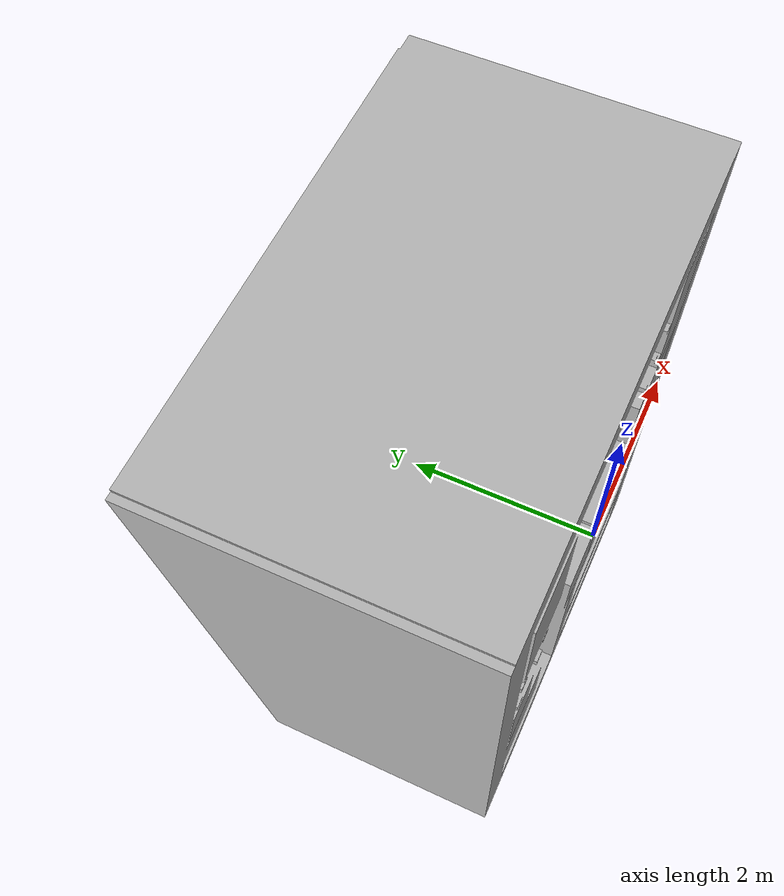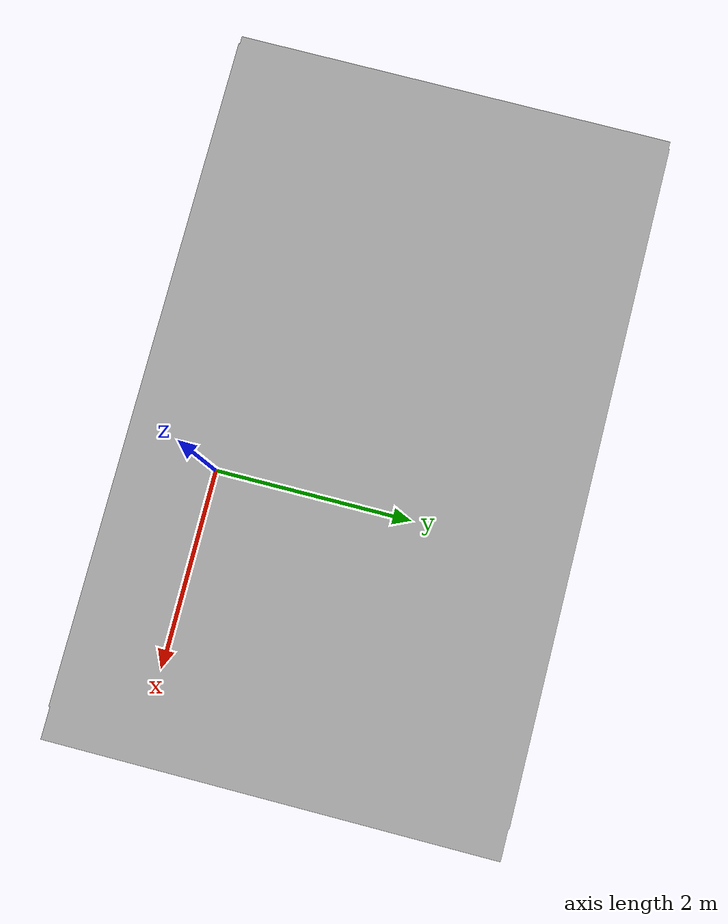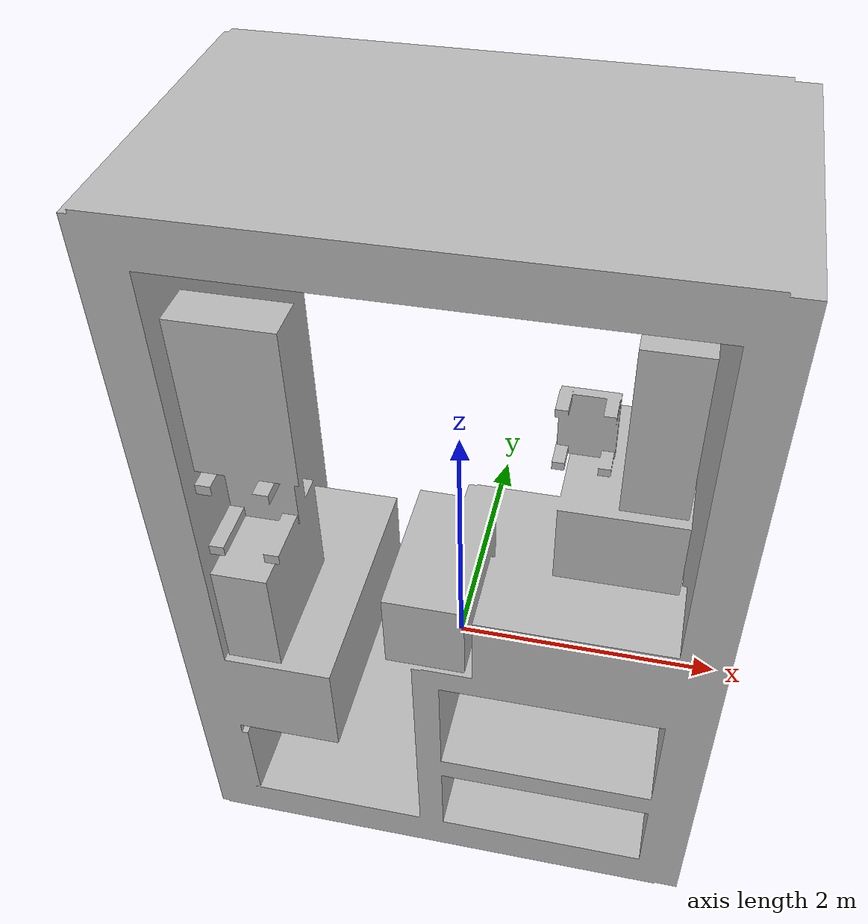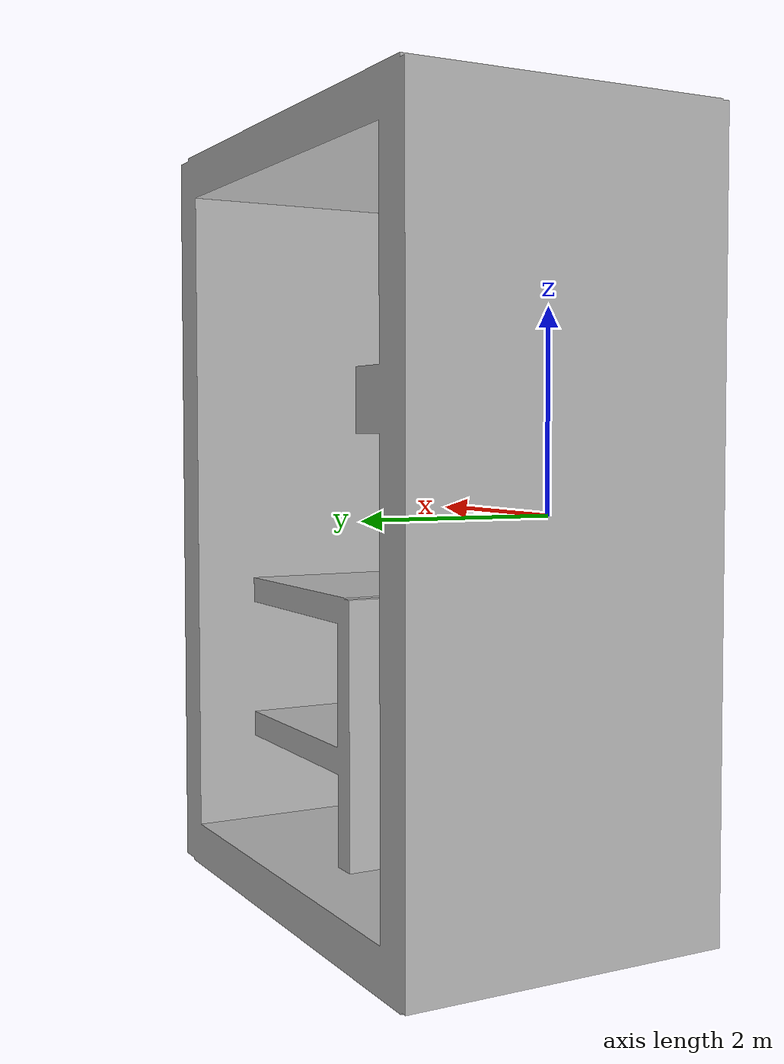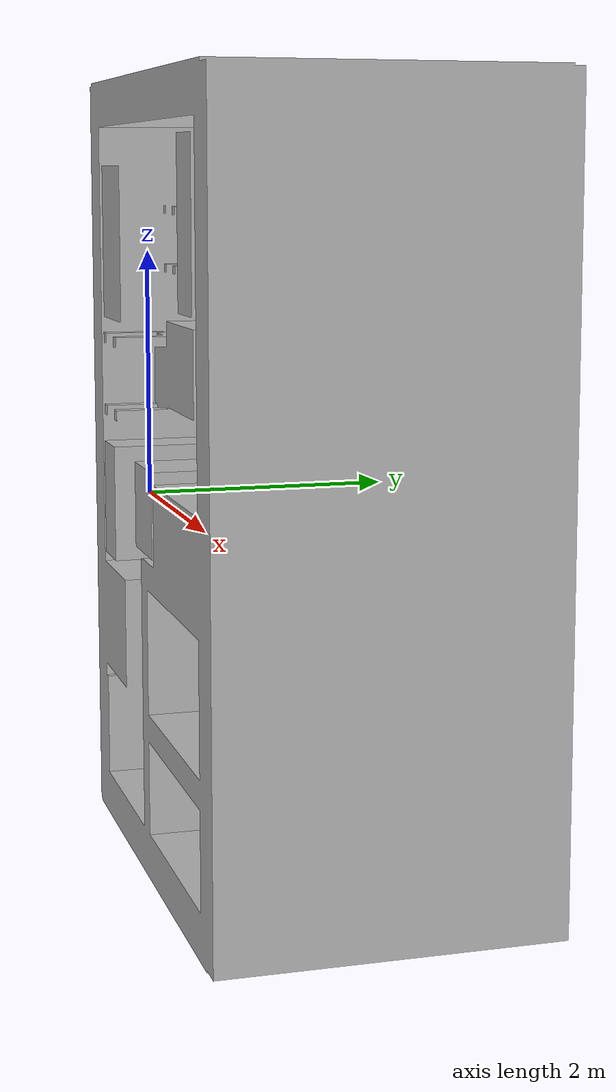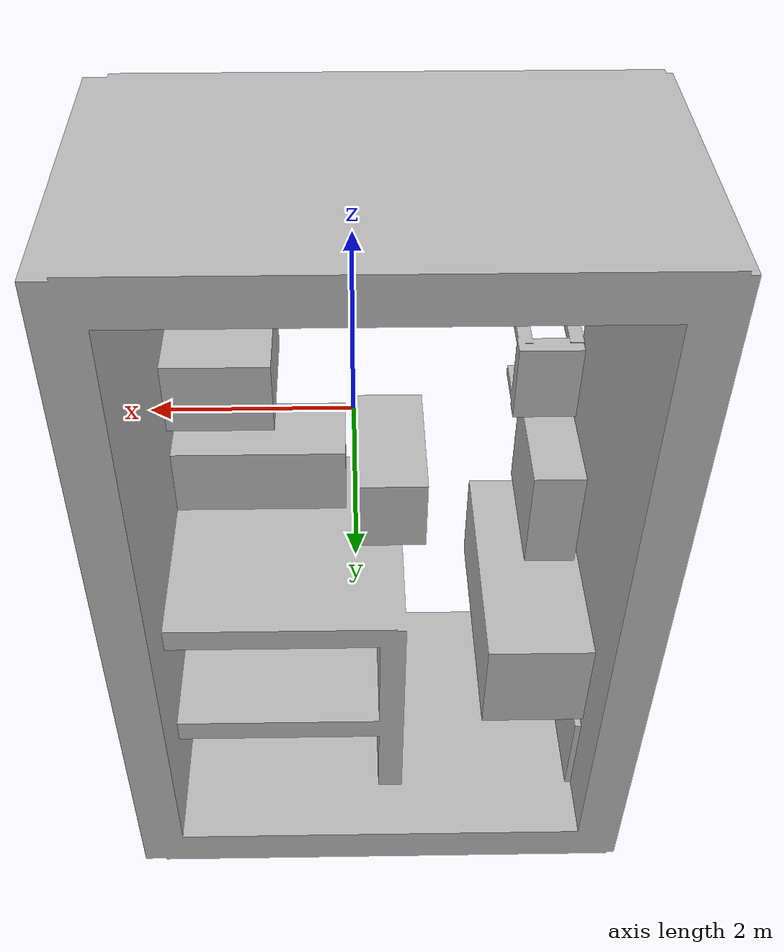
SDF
<?xml version='1.0'?>
<sdf version="1.4">
<model name="house">
  <pose>0 0 0 0 0 0</pose>
    <link name="link">
      <inertial>
        <mass>100.0</mass>
        <inertia>
          <ixx>0.083</ixx>
          <ixy>0.0</ixy>
          <ixz>0.0</ixz>
          <iyy>0.083</iyy>
          <iyz>0.0</iyz>
          <izz>0.083</izz>
        </inertia>
      </inertial>
      <collision name="collision">
        <geometry>
          <mesh>
            <uri>model://house/bighouse.stl</uri>
          </mesh>
        </geometry>
      </collision>
      <visual name="visual">
        <geometry>
          <mesh>
            <uri>model://house/bighouse.obj</uri>
          </mesh>
        </geometry>
      </visual>
    </link>
  </model>
</sdf>
